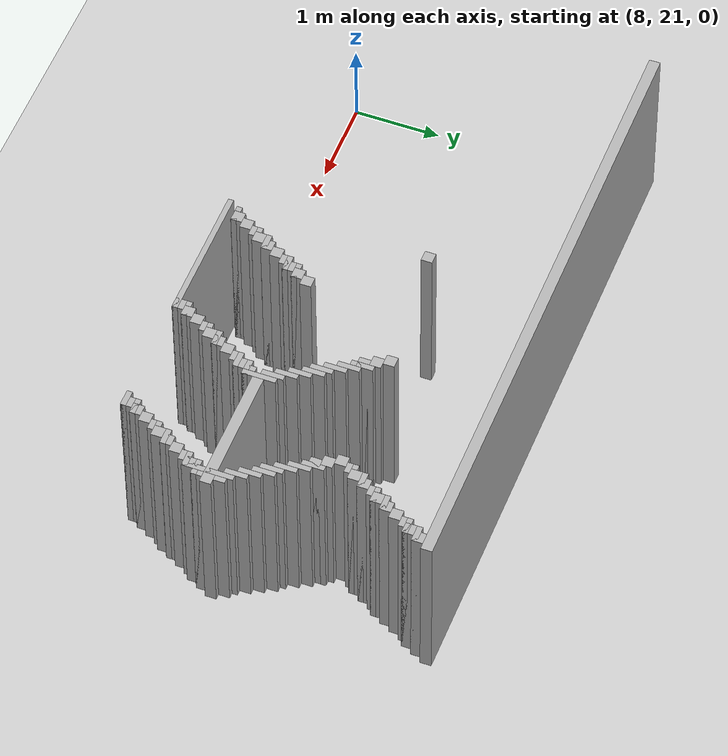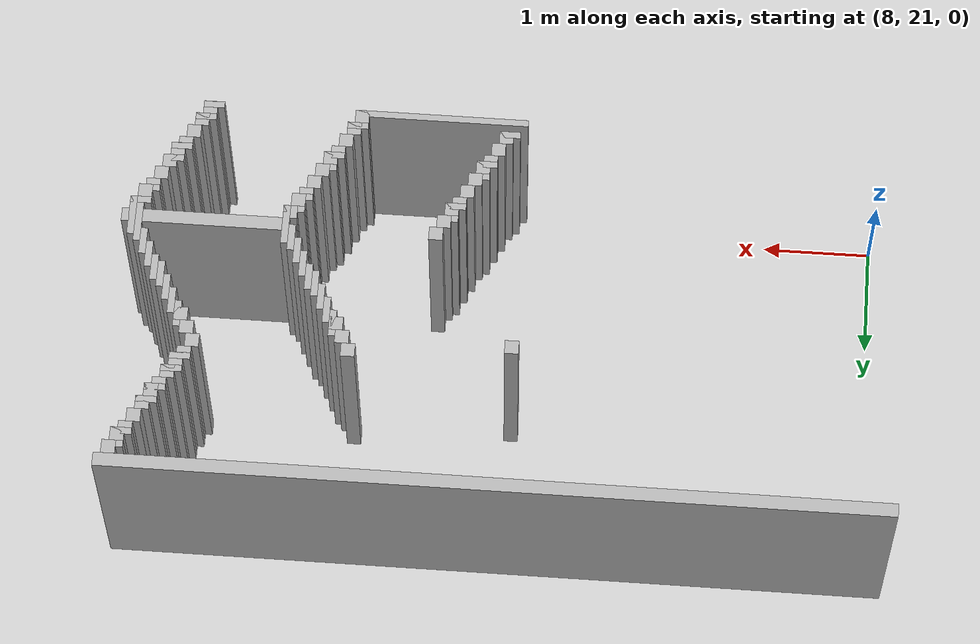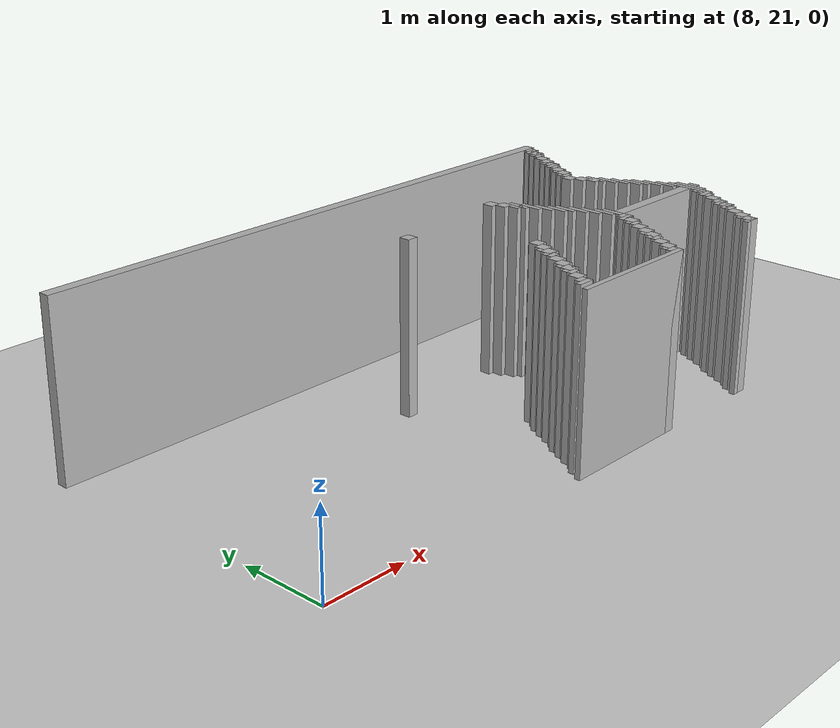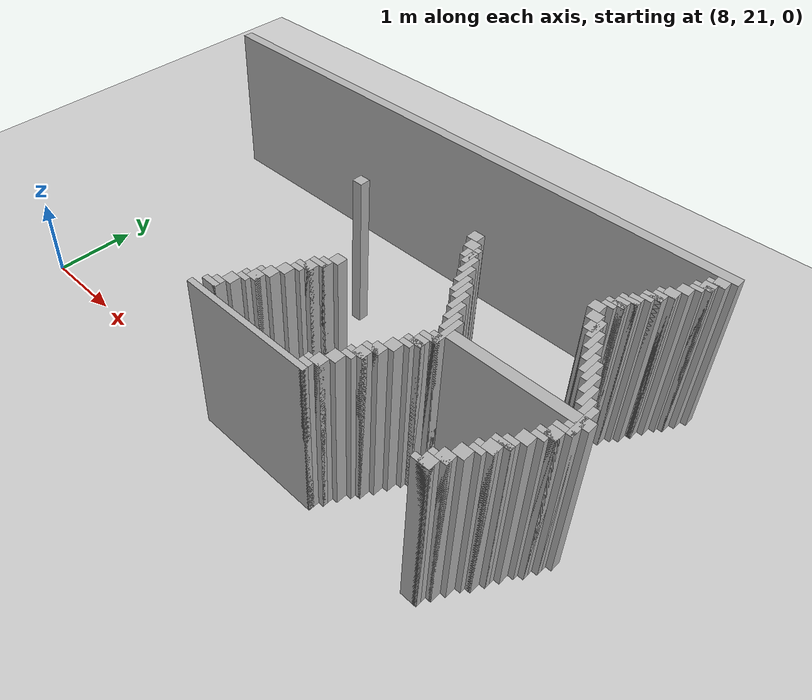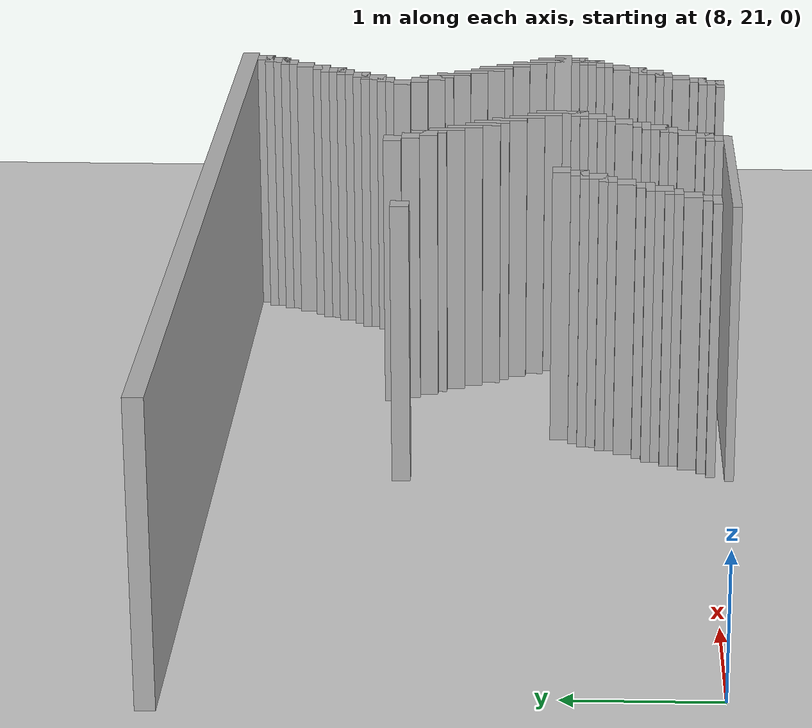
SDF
<sdf version="1.6">
 <world name="slam_world">
  <model name="ground_plane">
   <static>true</static>
   <link name="link">
    <collision name="collision">
     <geometry><plane><normal>0 0 1</normal><size>100 100</size></plane></geometry>
    </collision>
    <visual name="visual">
     <geometry><plane><normal>0 0 1</normal><size>100 100</size></plane></geometry>
     <material>
      <ambient>0.8 0.8 0.8 1</ambient>
      <diffuse>0.8 0.8 0.8 1</diffuse>
      <specular>0.8 0.8 0.8 1</specular>
     </material>
    </visual>
   </link>
  </model>
  <model name="wall_1">
   <static>true</static>
   <pose>11.361702127659573 24.446808510638295 1.0 0 0 0</pose>
   <link name="link">
    <collision name="collision">
     <geometry><box><size>7.148936170212766 0.1276595744680851 2.0</size></box></geometry>
    </collision>
    <visual name="visual">
     <geometry><box><size>7.148936170212766 0.1276595744680851 2.0</size></box></geometry>
     <material><ambient>0.5 0.5 0.5 1</ambient><diffuse>0.7 0.7 0.7 1</diffuse></material>
    </visual>
   </link>
  </model>
  <model name="wall_6">
   <static>true</static>
   <pose>14.808510638297872 24.319148936170212 1.0 0 0 0</pose>
   <link name="link">
    <collision name="collision">
     <geometry><box><size>0.1276595744680851 0.1276595744680851 2.0</size></box></geometry>
    </collision>
    <visual name="visual">
     <geometry><box><size>0.1276595744680851 0.1276595744680851 2.0</size></box></geometry>
     <material><ambient>0.5 0.5 0.5 1</ambient><diffuse>0.7 0.7 0.7 1</diffuse></material>
    </visual>
   </link>
  </model>
  <model name="wall_11">
   <static>true</static>
   <pose>14.77659574468085 24.28723404255319 1.0 0 0 0</pose>
   <link name="link">
    <collision name="collision">
     <geometry><box><size>0.19148936170212766 0.06382978723404255 2.0</size></box></geometry>
    </collision>
    <visual name="visual">
     <geometry><box><size>0.19148936170212766 0.06382978723404255 2.0</size></box></geometry>
     <material><ambient>0.5 0.5 0.5 1</ambient><diffuse>0.7 0.7 0.7 1</diffuse></material>
    </visual>
   </link>
  </model>
  <model name="wall_16">
   <static>true</static>
   <pose>14.744680851063828 24.191489361702125 1.0 0 0 0</pose>
   <link name="link">
    <collision name="collision">
     <geometry><box><size>0.1276595744680851 0.1276595744680851 2.0</size></box></geometry>
    </collision>
    <visual name="visual">
     <geometry><box><size>0.1276595744680851 0.1276595744680851 2.0</size></box></geometry>
     <material><ambient>0.5 0.5 0.5 1</ambient><diffuse>0.7 0.7 0.7 1</diffuse></material>
    </visual>
   </link>
  </model>
  <model name="wall_21">
   <static>true</static>
   <pose>14.712765957446807 24.159574468085104 1.0 0 0 0</pose>
   <link name="link">
    <collision name="collision">
     <geometry><box><size>0.19148936170212766 0.06382978723404255 2.0</size></box></geometry>
    </collision>
    <visual name="visual">
     <geometry><box><size>0.19148936170212766 0.06382978723404255 2.0</size></box></geometry>
     <material><ambient>0.5 0.5 0.5 1</ambient><diffuse>0.7 0.7 0.7 1</diffuse></material>
    </visual>
   </link>
  </model>
  <model name="wall_25">
   <static>true</static>
   <pose>14.680851063829786 24.095744680851062 1.0 0 0 0</pose>
   <link name="link">
    <collision name="collision">
     <geometry><box><size>0.1276595744680851 0.06382978723404255 2.0</size></box></geometry>
    </collision>
    <visual name="visual">
     <geometry><box><size>0.1276595744680851 0.06382978723404255 2.0</size></box></geometry>
     <material><ambient>0.5 0.5 0.5 1</ambient><diffuse>0.7 0.7 0.7 1</diffuse></material>
    </visual>
   </link>
  </model>
  <model name="wall_30">
   <static>true</static>
   <pose>14.617021276595743 23.999999999999996 1.0 0 0 0</pose>
   <link name="link">
    <collision name="collision">
     <geometry><box><size>0.1276595744680851 0.1276595744680851 2.0</size></box></geometry>
    </collision>
    <visual name="visual">
     <geometry><box><size>0.1276595744680851 0.1276595744680851 2.0</size></box></geometry>
     <material><ambient>0.5 0.5 0.5 1</ambient><diffuse>0.7 0.7 0.7 1</diffuse></material>
    </visual>
   </link>
  </model>
  <model name="wall_35">
   <static>true</static>
   <pose>14.553191489361701 23.872340425531913 1.0 0 0 0</pose>
   <link name="link">
    <collision name="collision">
     <geometry><box><size>0.1276595744680851 0.1276595744680851 2.0</size></box></geometry>
    </collision>
    <visual name="visual">
     <geometry><box><size>0.1276595744680851 0.1276595744680851 2.0</size></box></geometry>
     <material><ambient>0.5 0.5 0.5 1</ambient><diffuse>0.7 0.7 0.7 1</diffuse></material>
    </visual>
   </link>
  </model>
  <model name="wall_40">
   <static>true</static>
   <pose>14.52127659574468 23.840425531914892 1.0 0 0 0</pose>
   <link name="link">
    <collision name="collision">
     <geometry><box><size>0.19148936170212766 0.06382978723404255 2.0</size></box></geometry>
    </collision>
    <visual name="visual">
     <geometry><box><size>0.19148936170212766 0.06382978723404255 2.0</size></box></geometry>
     <material><ambient>0.5 0.5 0.5 1</ambient><diffuse>0.7 0.7 0.7 1</diffuse></material>
    </visual>
   </link>
  </model>
  <model name="wall_44">
   <static>true</static>
   <pose>14.489361702127658 23.744680851063826 1.0 0 0 0</pose>
   <link name="link">
    <collision name="collision">
     <geometry><box><size>0.1276595744680851 0.1276595744680851 2.0</size></box></geometry>
    </collision>
    <visual name="visual">
     <geometry><box><size>0.1276595744680851 0.1276595744680851 2.0</size></box></geometry>
     <material><ambient>0.5 0.5 0.5 1</ambient><diffuse>0.7 0.7 0.7 1</diffuse></material>
    </visual>
   </link>
  </model>
  <model name="wall_49">
   <static>true</static>
   <pose>14.457446808510637 23.712765957446805 1.0 0 0 0</pose>
   <link name="link">
    <collision name="collision">
     <geometry><box><size>0.19148936170212766 0.06382978723404255 2.0</size></box></geometry>
    </collision>
    <visual name="visual">
     <geometry><box><size>0.19148936170212766 0.06382978723404255 2.0</size></box></geometry>
     <material><ambient>0.5 0.5 0.5 1</ambient><diffuse>0.7 0.7 0.7 1</diffuse></material>
    </visual>
   </link>
  </model>
  <model name="wall_53">
   <static>true</static>
   <pose>14.425531914893616 23.648936170212764 1.0 0 0 0</pose>
   <link name="link">
    <collision name="collision">
     <geometry><box><size>0.1276595744680851 0.06382978723404255 2.0</size></box></geometry>
    </collision>
    <visual name="visual">
     <geometry><box><size>0.1276595744680851 0.06382978723404255 2.0</size></box></geometry>
     <material><ambient>0.5 0.5 0.5 1</ambient><diffuse>0.7 0.7 0.7 1</diffuse></material>
    </visual>
   </link>
  </model>
  <model name="wall_58">
   <static>true</static>
   <pose>14.361702127659573 23.5531914893617 1.0 0 0 0</pose>
   <link name="link">
    <collision name="collision">
     <geometry><box><size>0.1276595744680851 0.1276595744680851 2.0</size></box></geometry>
    </collision>
    <visual name="visual">
     <geometry><box><size>0.1276595744680851 0.1276595744680851 2.0</size></box></geometry>
     <material><ambient>0.5 0.5 0.5 1</ambient><diffuse>0.7 0.7 0.7 1</diffuse></material>
    </visual>
   </link>
  </model>
  <model name="wall_63">
   <static>true</static>
   <pose>14.329787234042552 23.52127659574468 1.0 0 0 0</pose>
   <link name="link">
    <collision name="collision">
     <geometry><box><size>0.19148936170212766 0.06382978723404255 2.0</size></box></geometry>
    </collision>
    <visual name="visual">
     <geometry><box><size>0.19148936170212766 0.06382978723404255 2.0</size></box></geometry>
     <material><ambient>0.5 0.5 0.5 1</ambient><diffuse>0.7 0.7 0.7 1</diffuse></material>
    </visual>
   </link>
  </model>
  <model name="wall_67">
   <static>true</static>
   <pose>14.297872340425531 23.425531914893615 1.0 0 0 0</pose>
   <link name="link">
    <collision name="collision">
     <geometry><box><size>0.1276595744680851 0.1276595744680851 2.0</size></box></geometry>
    </collision>
    <visual name="visual">
     <geometry><box><size>0.1276595744680851 0.1276595744680851 2.0</size></box></geometry>
     <material><ambient>0.5 0.5 0.5 1</ambient><diffuse>0.7 0.7 0.7 1</diffuse></material>
    </visual>
   </link>
  </model>
  <model name="wall_72">
   <static>true</static>
   <pose>14.265957446808509 23.393617021276594 1.0 0 0 0</pose>
   <link name="link">
    <collision name="collision">
     <geometry><box><size>0.19148936170212766 0.06382978723404255 2.0</size></box></geometry>
    </collision>
    <visual name="visual">
     <geometry><box><size>0.19148936170212766 0.06382978723404255 2.0</size></box></geometry>
     <material><ambient>0.5 0.5 0.5 1</ambient><diffuse>0.7 0.7 0.7 1</diffuse></material>
    </visual>
   </link>
  </model>
  <model name="wall_76">
   <static>true</static>
   <pose>14.234042553191488 23.329787234042552 1.0 0 0 0</pose>
   <link name="link">
    <collision name="collision">
     <geometry><box><size>0.1276595744680851 0.06382978723404255 2.0</size></box></geometry>
    </collision>
    <visual name="visual">
     <geometry><box><size>0.1276595744680851 0.06382978723404255 2.0</size></box></geometry>
     <material><ambient>0.5 0.5 0.5 1</ambient><diffuse>0.7 0.7 0.7 1</diffuse></material>
    </visual>
   </link>
  </model>
  <model name="wall_82">
   <static>true</static>
   <pose>12.76595744680851 23.234042553191486 1.0 0 0 0</pose>
   <link name="link">
    <collision name="collision">
     <geometry><box><size>0.1276595744680851 0.1276595744680851 2.0</size></box></geometry>
    </collision>
    <visual name="visual">
     <geometry><box><size>0.1276595744680851 0.1276595744680851 2.0</size></box></geometry>
     <material><ambient>0.5 0.5 0.5 1</ambient><diffuse>0.7 0.7 0.7 1</diffuse></material>
    </visual>
   </link>
  </model>
  <model name="wall_83">
   <static>true</static>
   <pose>14.170212765957446 23.234042553191486 1.0 0 0 0</pose>
   <link name="link">
    <collision name="collision">
     <geometry><box><size>0.1276595744680851 0.1276595744680851 2.0</size></box></geometry>
    </collision>
    <visual name="visual">
     <geometry><box><size>0.1276595744680851 0.1276595744680851 2.0</size></box></geometry>
     <material><ambient>0.5 0.5 0.5 1</ambient><diffuse>0.7 0.7 0.7 1</diffuse></material>
    </visual>
   </link>
  </model>
  <model name="wall_91">
   <static>true</static>
   <pose>11.297872340425531 23.106382978723403 1.0 0 0 0</pose>
   <link name="link">
    <collision name="collision">
     <geometry><box><size>0.1276595744680851 0.1276595744680851 2.0</size></box></geometry>
    </collision>
    <visual name="visual">
     <geometry><box><size>0.1276595744680851 0.1276595744680851 2.0</size></box></geometry>
     <material><ambient>0.5 0.5 0.5 1</ambient><diffuse>0.7 0.7 0.7 1</diffuse></material>
    </visual>
   </link>
  </model>
  <model name="wall_92">
   <static>true</static>
   <pose>12.829787234042552 23.106382978723403 1.0 0 0 0</pose>
   <link name="link">
    <collision name="collision">
     <geometry><box><size>0.1276595744680851 0.1276595744680851 2.0</size></box></geometry>
    </collision>
    <visual name="visual">
     <geometry><box><size>0.1276595744680851 0.1276595744680851 2.0</size></box></geometry>
     <material><ambient>0.5 0.5 0.5 1</ambient><diffuse>0.7 0.7 0.7 1</diffuse></material>
    </visual>
   </link>
  </model>
  <model name="wall_93">
   <static>true</static>
   <pose>14.234042553191488 23.106382978723403 1.0 0 0 0</pose>
   <link name="link">
    <collision name="collision">
     <geometry><box><size>0.1276595744680851 0.1276595744680851 2.0</size></box></geometry>
    </collision>
    <visual name="visual">
     <geometry><box><size>0.1276595744680851 0.1276595744680851 2.0</size></box></geometry>
     <material><ambient>0.5 0.5 0.5 1</ambient><diffuse>0.7 0.7 0.7 1</diffuse></material>
    </visual>
   </link>
  </model>
  <model name="wall_102">
   <static>true</static>
   <pose>12.925531914893616 22.978723404255316 1.0 0 0 0</pose>
   <link name="link">
    <collision name="collision">
     <geometry><box><size>0.06382978723404255 0.2553191489361702 2.0</size></box></geometry>
    </collision>
    <visual name="visual">
     <geometry><box><size>0.06382978723404255 0.2553191489361702 2.0</size></box></geometry>
     <material><ambient>0.5 0.5 0.5 1</ambient><diffuse>0.7 0.7 0.7 1</diffuse></material>
    </visual>
   </link>
  </model>
  <model name="wall_103">
   <static>true</static>
   <pose>14.329787234042552 22.978723404255316 1.0 0 0 0</pose>
   <link name="link">
    <collision name="collision">
     <geometry><box><size>0.06382978723404255 0.2553191489361702 2.0</size></box></geometry>
    </collision>
    <visual name="visual">
     <geometry><box><size>0.06382978723404255 0.2553191489361702 2.0</size></box></geometry>
     <material><ambient>0.5 0.5 0.5 1</ambient><diffuse>0.7 0.7 0.7 1</diffuse></material>
    </visual>
   </link>
  </model>
  <model name="wall_112">
   <static>true</static>
   <pose>12.893617021276595 22.978723404255316 1.0 0 0 0</pose>
   <link name="link">
    <collision name="collision">
     <geometry><box><size>0.1276595744680851 0.1276595744680851 2.0</size></box></geometry>
    </collision>
    <visual name="visual">
     <geometry><box><size>0.1276595744680851 0.1276595744680851 2.0</size></box></geometry>
     <material><ambient>0.5 0.5 0.5 1</ambient><diffuse>0.7 0.7 0.7 1</diffuse></material>
    </visual>
   </link>
  </model>
  <model name="wall_113">
   <static>true</static>
   <pose>14.297872340425531 22.978723404255316 1.0 0 0 0</pose>
   <link name="link">
    <collision name="collision">
     <geometry><box><size>0.1276595744680851 0.1276595744680851 2.0</size></box></geometry>
    </collision>
    <visual name="visual">
     <geometry><box><size>0.1276595744680851 0.1276595744680851 2.0</size></box></geometry>
     <material><ambient>0.5 0.5 0.5 1</ambient><diffuse>0.7 0.7 0.7 1</diffuse></material>
    </visual>
   </link>
  </model>
  <model name="wall_122">
   <static>true</static>
   <pose>12.989361702127658 22.851063829787233 1.0 0 0 0</pose>
   <link name="link">
    <collision name="collision">
     <geometry><box><size>0.06382978723404255 0.2553191489361702 2.0</size></box></geometry>
    </collision>
    <visual name="visual">
     <geometry><box><size>0.06382978723404255 0.2553191489361702 2.0</size></box></geometry>
     <material><ambient>0.5 0.5 0.5 1</ambient><diffuse>0.7 0.7 0.7 1</diffuse></material>
    </visual>
   </link>
  </model>
  <model name="wall_123">
   <static>true</static>
   <pose>14.393617021276595 22.851063829787233 1.0 0 0 0</pose>
   <link name="link">
    <collision name="collision">
     <geometry><box><size>0.06382978723404255 0.2553191489361702 2.0</size></box></geometry>
    </collision>
    <visual name="visual">
     <geometry><box><size>0.06382978723404255 0.2553191489361702 2.0</size></box></geometry>
     <material><ambient>0.5 0.5 0.5 1</ambient><diffuse>0.7 0.7 0.7 1</diffuse></material>
    </visual>
   </link>
  </model>
  <model name="wall_136">
   <static>true</static>
   <pose>13.053191489361701 22.723404255319146 1.0 0 0 0</pose>
   <link name="link">
    <collision name="collision">
     <geometry><box><size>0.06382978723404255 0.2553191489361702 2.0</size></box></geometry>
    </collision>
    <visual name="visual">
     <geometry><box><size>0.06382978723404255 0.2553191489361702 2.0</size></box></geometry>
     <material><ambient>0.5 0.5 0.5 1</ambient><diffuse>0.7 0.7 0.7 1</diffuse></material>
    </visual>
   </link>
  </model>
  <model name="wall_137">
   <static>true</static>
   <pose>14.457446808510637 22.723404255319146 1.0 0 0 0</pose>
   <link name="link">
    <collision name="collision">
     <geometry><box><size>0.06382978723404255 0.2553191489361702 2.0</size></box></geometry>
    </collision>
    <visual name="visual">
     <geometry><box><size>0.06382978723404255 0.2553191489361702 2.0</size></box></geometry>
     <material><ambient>0.5 0.5 0.5 1</ambient><diffuse>0.7 0.7 0.7 1</diffuse></material>
    </visual>
   </link>
  </model>
  <model name="wall_146">
   <static>true</static>
   <pose>13.117021276595743 22.595744680851062 1.0 0 0 0</pose>
   <link name="link">
    <collision name="collision">
     <geometry><box><size>0.06382978723404255 0.2553191489361702 2.0</size></box></geometry>
    </collision>
    <visual name="visual">
     <geometry><box><size>0.06382978723404255 0.2553191489361702 2.0</size></box></geometry>
     <material><ambient>0.5 0.5 0.5 1</ambient><diffuse>0.7 0.7 0.7 1</diffuse></material>
    </visual>
   </link>
  </model>
  <model name="wall_147">
   <static>true</static>
   <pose>14.52127659574468 22.595744680851062 1.0 0 0 0</pose>
   <link name="link">
    <collision name="collision">
     <geometry><box><size>0.06382978723404255 0.2553191489361702 2.0</size></box></geometry>
    </collision>
    <visual name="visual">
     <geometry><box><size>0.06382978723404255 0.2553191489361702 2.0</size></box></geometry>
     <material><ambient>0.5 0.5 0.5 1</ambient><diffuse>0.7 0.7 0.7 1</diffuse></material>
    </visual>
   </link>
  </model>
  <model name="wall_156">
   <static>true</static>
   <pose>13.180851063829786 22.53191489361702 1.0 0 0 0</pose>
   <link name="link">
    <collision name="collision">
     <geometry><box><size>0.06382978723404255 0.2553191489361702 2.0</size></box></geometry>
    </collision>
    <visual name="visual">
     <geometry><box><size>0.06382978723404255 0.2553191489361702 2.0</size></box></geometry>
     <material><ambient>0.5 0.5 0.5 1</ambient><diffuse>0.7 0.7 0.7 1</diffuse></material>
    </visual>
   </link>
  </model>
  <model name="wall_157">
   <static>true</static>
   <pose>14.585106382978722 22.53191489361702 1.0 0 0 0</pose>
   <link name="link">
    <collision name="collision">
     <geometry><box><size>0.06382978723404255 0.2553191489361702 2.0</size></box></geometry>
    </collision>
    <visual name="visual">
     <geometry><box><size>0.06382978723404255 0.2553191489361702 2.0</size></box></geometry>
     <material><ambient>0.5 0.5 0.5 1</ambient><diffuse>0.7 0.7 0.7 1</diffuse></material>
    </visual>
   </link>
  </model>
  <model name="wall_170">
   <static>true</static>
   <pose>13.244680851063828 22.404255319148934 1.0 0 0 0</pose>
   <link name="link">
    <collision name="collision">
     <geometry><box><size>0.06382978723404255 0.2553191489361702 2.0</size></box></geometry>
    </collision>
    <visual name="visual">
     <geometry><box><size>0.06382978723404255 0.2553191489361702 2.0</size></box></geometry>
     <material><ambient>0.5 0.5 0.5 1</ambient><diffuse>0.7 0.7 0.7 1</diffuse></material>
    </visual>
   </link>
  </model>
  <model name="wall_171">
   <static>true</static>
   <pose>14.648936170212766 22.404255319148934 1.0 0 0 0</pose>
   <link name="link">
    <collision name="collision">
     <geometry><box><size>0.06382978723404255 0.2553191489361702 2.0</size></box></geometry>
    </collision>
    <visual name="visual">
     <geometry><box><size>0.06382978723404255 0.2553191489361702 2.0</size></box></geometry>
     <material><ambient>0.5 0.5 0.5 1</ambient><diffuse>0.7 0.7 0.7 1</diffuse></material>
    </visual>
   </link>
  </model>
  <model name="wall_184">
   <static>true</static>
   <pose>13.308510638297872 22.27659574468085 1.0 0 0 0</pose>
   <link name="link">
    <collision name="collision">
     <geometry><box><size>0.06382978723404255 0.2553191489361702 2.0</size></box></geometry>
    </collision>
    <visual name="visual">
     <geometry><box><size>0.06382978723404255 0.2553191489361702 2.0</size></box></geometry>
     <material><ambient>0.5 0.5 0.5 1</ambient><diffuse>0.7 0.7 0.7 1</diffuse></material>
    </visual>
   </link>
  </model>
  <model name="wall_185">
   <static>true</static>
   <pose>14.712765957446807 22.27659574468085 1.0 0 0 0</pose>
   <link name="link">
    <collision name="collision">
     <geometry><box><size>0.06382978723404255 0.2553191489361702 2.0</size></box></geometry>
    </collision>
    <visual name="visual">
     <geometry><box><size>0.06382978723404255 0.2553191489361702 2.0</size></box></geometry>
     <material><ambient>0.5 0.5 0.5 1</ambient><diffuse>0.7 0.7 0.7 1</diffuse></material>
    </visual>
   </link>
  </model>
  <model name="wall_198">
   <static>true</static>
   <pose>13.372340425531913 22.148936170212764 1.0 0 0 0</pose>
   <link name="link">
    <collision name="collision">
     <geometry><box><size>0.06382978723404255 0.2553191489361702 2.0</size></box></geometry>
    </collision>
    <visual name="visual">
     <geometry><box><size>0.06382978723404255 0.2553191489361702 2.0</size></box></geometry>
     <material><ambient>0.5 0.5 0.5 1</ambient><diffuse>0.7 0.7 0.7 1</diffuse></material>
    </visual>
   </link>
  </model>
  <model name="wall_199">
   <static>true</static>
   <pose>14.77659574468085 21.989361702127656 1.0 0 0 0</pose>
   <link name="link">
    <collision name="collision">
     <geometry><box><size>0.06382978723404255 0.5744680851063829 2.0</size></box></geometry>
    </collision>
    <visual name="visual">
     <geometry><box><size>0.06382978723404255 0.5744680851063829 2.0</size></box></geometry>
     <material><ambient>0.5 0.5 0.5 1</ambient><diffuse>0.7 0.7 0.7 1</diffuse></material>
    </visual>
   </link>
  </model>
  <model name="wall_207">
   <static>true</static>
   <pose>13.436170212765957 22.02127659574468 1.0 0 0 0</pose>
   <link name="link">
    <collision name="collision">
     <geometry><box><size>0.06382978723404255 0.3829787234042553 2.0</size></box></geometry>
    </collision>
    <visual name="visual">
     <geometry><box><size>0.06382978723404255 0.3829787234042553 2.0</size></box></geometry>
     <material><ambient>0.5 0.5 0.5 1</ambient><diffuse>0.7 0.7 0.7 1</diffuse></material>
    </visual>
   </link>
  </model>
  <model name="wall_208">
   <static>true</static>
   <pose>14.840425531914892 22.02127659574468 1.0 0 0 0</pose>
   <link name="link">
    <collision name="collision">
     <geometry><box><size>0.06382978723404255 0.3829787234042553 2.0</size></box></geometry>
    </collision>
    <visual name="visual">
     <geometry><box><size>0.06382978723404255 0.3829787234042553 2.0</size></box></geometry>
     <material><ambient>0.5 0.5 0.5 1</ambient><diffuse>0.7 0.7 0.7 1</diffuse></material>
    </visual>
   </link>
  </model>
  <model name="wall_220">
   <static>true</static>
   <pose>12.063829787234042 22.02127659574468 1.0 0 0 0</pose>
   <link name="link">
    <collision name="collision">
     <geometry><box><size>0.1276595744680851 0.1276595744680851 2.0</size></box></geometry>
    </collision>
    <visual name="visual">
     <geometry><box><size>0.1276595744680851 0.1276595744680851 2.0</size></box></geometry>
     <material><ambient>0.5 0.5 0.5 1</ambient><diffuse>0.7 0.7 0.7 1</diffuse></material>
    </visual>
   </link>
  </model>
  <model name="wall_221">
   <static>true</static>
   <pose>14.202127659574467 22.02127659574468 1.0 0 0 0</pose>
   <link name="link">
    <collision name="collision">
     <geometry><box><size>1.4680851063829785 0.1276595744680851 2.0</size></box></geometry>
    </collision>
    <visual name="visual">
     <geometry><box><size>1.4680851063829785 0.1276595744680851 2.0</size></box></geometry>
     <material><ambient>0.5 0.5 0.5 1</ambient><diffuse>0.7 0.7 0.7 1</diffuse></material>
    </visual>
   </link>
  </model>
  <model name="wall_231">
   <static>true</static>
   <pose>11.999999999999998 21.893617021276594 1.0 0 0 0</pose>
   <link name="link">
    <collision name="collision">
     <geometry><box><size>0.1276595744680851 0.1276595744680851 2.0</size></box></geometry>
    </collision>
    <visual name="visual">
     <geometry><box><size>0.1276595744680851 0.1276595744680851 2.0</size></box></geometry>
     <material><ambient>0.5 0.5 0.5 1</ambient><diffuse>0.7 0.7 0.7 1</diffuse></material>
    </visual>
   </link>
  </model>
  <model name="wall_232">
   <static>true</static>
   <pose>13.404255319148936 21.893617021276594 1.0 0 0 0</pose>
   <link name="link">
    <collision name="collision">
     <geometry><box><size>0.1276595744680851 0.1276595744680851 2.0</size></box></geometry>
    </collision>
    <visual name="visual">
     <geometry><box><size>0.1276595744680851 0.1276595744680851 2.0</size></box></geometry>
     <material><ambient>0.5 0.5 0.5 1</ambient><diffuse>0.7 0.7 0.7 1</diffuse></material>
    </visual>
   </link>
  </model>
  <model name="wall_238">
   <static>true</static>
   <pose>11.968085106382977 21.861702127659573 1.0 0 0 0</pose>
   <link name="link">
    <collision name="collision">
     <geometry><box><size>0.19148936170212766 0.06382978723404255 2.0</size></box></geometry>
    </collision>
    <visual name="visual">
     <geometry><box><size>0.19148936170212766 0.06382978723404255 2.0</size></box></geometry>
     <material><ambient>0.5 0.5 0.5 1</ambient><diffuse>0.7 0.7 0.7 1</diffuse></material>
    </visual>
   </link>
  </model>
  <model name="wall_239">
   <static>true</static>
   <pose>13.372340425531913 21.861702127659573 1.0 0 0 0</pose>
   <link name="link">
    <collision name="collision">
     <geometry><box><size>0.19148936170212766 0.06382978723404255 2.0</size></box></geometry>
    </collision>
    <visual name="visual">
     <geometry><box><size>0.19148936170212766 0.06382978723404255 2.0</size></box></geometry>
     <material><ambient>0.5 0.5 0.5 1</ambient><diffuse>0.7 0.7 0.7 1</diffuse></material>
    </visual>
   </link>
  </model>
  <model name="wall_240">
   <static>true</static>
   <pose>14.77659574468085 21.861702127659573 1.0 0 0 0</pose>
   <link name="link">
    <collision name="collision">
     <geometry><box><size>0.19148936170212766 0.06382978723404255 2.0</size></box></geometry>
    </collision>
    <visual name="visual">
     <geometry><box><size>0.19148936170212766 0.06382978723404255 2.0</size></box></geometry>
     <material><ambient>0.5 0.5 0.5 1</ambient><diffuse>0.7 0.7 0.7 1</diffuse></material>
    </visual>
   </link>
  </model>
  <model name="wall_244">
   <static>true</static>
   <pose>11.936170212765957 21.76595744680851 1.0 0 0 0</pose>
   <link name="link">
    <collision name="collision">
     <geometry><box><size>0.1276595744680851 0.1276595744680851 2.0</size></box></geometry>
    </collision>
    <visual name="visual">
     <geometry><box><size>0.1276595744680851 0.1276595744680851 2.0</size></box></geometry>
     <material><ambient>0.5 0.5 0.5 1</ambient><diffuse>0.7 0.7 0.7 1</diffuse></material>
    </visual>
   </link>
  </model>
  <model name="wall_245">
   <static>true</static>
   <pose>13.340425531914892 21.76595744680851 1.0 0 0 0</pose>
   <link name="link">
    <collision name="collision">
     <geometry><box><size>0.1276595744680851 0.1276595744680851 2.0</size></box></geometry>
    </collision>
    <visual name="visual">
     <geometry><box><size>0.1276595744680851 0.1276595744680851 2.0</size></box></geometry>
     <material><ambient>0.5 0.5 0.5 1</ambient><diffuse>0.7 0.7 0.7 1</diffuse></material>
    </visual>
   </link>
  </model>
  <model name="wall_246">
   <static>true</static>
   <pose>14.744680851063828 21.76595744680851 1.0 0 0 0</pose>
   <link name="link">
    <collision name="collision">
     <geometry><box><size>0.1276595744680851 0.1276595744680851 2.0</size></box></geometry>
    </collision>
    <visual name="visual">
     <geometry><box><size>0.1276595744680851 0.1276595744680851 2.0</size></box></geometry>
     <material><ambient>0.5 0.5 0.5 1</ambient><diffuse>0.7 0.7 0.7 1</diffuse></material>
    </visual>
   </link>
  </model>
  <model name="wall_252">
   <static>true</static>
   <pose>11.904255319148936 21.734042553191486 1.0 0 0 0</pose>
   <link name="link">
    <collision name="collision">
     <geometry><box><size>0.19148936170212766 0.06382978723404255 2.0</size></box></geometry>
    </collision>
    <visual name="visual">
     <geometry><box><size>0.19148936170212766 0.06382978723404255 2.0</size></box></geometry>
     <material><ambient>0.5 0.5 0.5 1</ambient><diffuse>0.7 0.7 0.7 1</diffuse></material>
    </visual>
   </link>
  </model>
  <model name="wall_253">
   <static>true</static>
   <pose>13.308510638297872 21.734042553191486 1.0 0 0 0</pose>
   <link name="link">
    <collision name="collision">
     <geometry><box><size>0.19148936170212766 0.06382978723404255 2.0</size></box></geometry>
    </collision>
    <visual name="visual">
     <geometry><box><size>0.19148936170212766 0.06382978723404255 2.0</size></box></geometry>
     <material><ambient>0.5 0.5 0.5 1</ambient><diffuse>0.7 0.7 0.7 1</diffuse></material>
    </visual>
   </link>
  </model>
  <model name="wall_254">
   <static>true</static>
   <pose>14.712765957446807 21.734042553191486 1.0 0 0 0</pose>
   <link name="link">
    <collision name="collision">
     <geometry><box><size>0.19148936170212766 0.06382978723404255 2.0</size></box></geometry>
    </collision>
    <visual name="visual">
     <geometry><box><size>0.19148936170212766 0.06382978723404255 2.0</size></box></geometry>
     <material><ambient>0.5 0.5 0.5 1</ambient><diffuse>0.7 0.7 0.7 1</diffuse></material>
    </visual>
   </link>
  </model>
  <model name="wall_258">
   <static>true</static>
   <pose>11.872340425531913 21.670212765957444 1.0 0 0 0</pose>
   <link name="link">
    <collision name="collision">
     <geometry><box><size>0.1276595744680851 0.06382978723404255 2.0</size></box></geometry>
    </collision>
    <visual name="visual">
     <geometry><box><size>0.1276595744680851 0.06382978723404255 2.0</size></box></geometry>
     <material><ambient>0.5 0.5 0.5 1</ambient><diffuse>0.7 0.7 0.7 1</diffuse></material>
    </visual>
   </link>
  </model>
  <model name="wall_259">
   <static>true</static>
   <pose>13.27659574468085 21.670212765957444 1.0 0 0 0</pose>
   <link name="link">
    <collision name="collision">
     <geometry><box><size>0.1276595744680851 0.06382978723404255 2.0</size></box></geometry>
    </collision>
    <visual name="visual">
     <geometry><box><size>0.1276595744680851 0.06382978723404255 2.0</size></box></geometry>
     <material><ambient>0.5 0.5 0.5 1</ambient><diffuse>0.7 0.7 0.7 1</diffuse></material>
    </visual>
   </link>
  </model>
  <model name="wall_260">
   <static>true</static>
   <pose>14.680851063829786 21.670212765957444 1.0 0 0 0</pose>
   <link name="link">
    <collision name="collision">
     <geometry><box><size>0.1276595744680851 0.06382978723404255 2.0</size></box></geometry>
    </collision>
    <visual name="visual">
     <geometry><box><size>0.1276595744680851 0.06382978723404255 2.0</size></box></geometry>
     <material><ambient>0.5 0.5 0.5 1</ambient><diffuse>0.7 0.7 0.7 1</diffuse></material>
    </visual>
   </link>
  </model>
  <model name="wall_266">
   <static>true</static>
   <pose>11.808510638297872 21.574468085106382 1.0 0 0 0</pose>
   <link name="link">
    <collision name="collision">
     <geometry><box><size>0.1276595744680851 0.1276595744680851 2.0</size></box></geometry>
    </collision>
    <visual name="visual">
     <geometry><box><size>0.1276595744680851 0.1276595744680851 2.0</size></box></geometry>
     <material><ambient>0.5 0.5 0.5 1</ambient><diffuse>0.7 0.7 0.7 1</diffuse></material>
    </visual>
   </link>
  </model>
  <model name="wall_267">
   <static>true</static>
   <pose>13.212765957446807 21.574468085106382 1.0 0 0 0</pose>
   <link name="link">
    <collision name="collision">
     <geometry><box><size>0.1276595744680851 0.1276595744680851 2.0</size></box></geometry>
    </collision>
    <visual name="visual">
     <geometry><box><size>0.1276595744680851 0.1276595744680851 2.0</size></box></geometry>
     <material><ambient>0.5 0.5 0.5 1</ambient><diffuse>0.7 0.7 0.7 1</diffuse></material>
    </visual>
   </link>
  </model>
  <model name="wall_268">
   <static>true</static>
   <pose>14.617021276595743 21.574468085106382 1.0 0 0 0</pose>
   <link name="link">
    <collision name="collision">
     <geometry><box><size>0.1276595744680851 0.1276595744680851 2.0</size></box></geometry>
    </collision>
    <visual name="visual">
     <geometry><box><size>0.1276595744680851 0.1276595744680851 2.0</size></box></geometry>
     <material><ambient>0.5 0.5 0.5 1</ambient><diffuse>0.7 0.7 0.7 1</diffuse></material>
    </visual>
   </link>
  </model>
  <model name="wall_274">
   <static>true</static>
   <pose>11.744680851063828 21.446808510638295 1.0 0 0 0</pose>
   <link name="link">
    <collision name="collision">
     <geometry><box><size>0.1276595744680851 0.1276595744680851 2.0</size></box></geometry>
    </collision>
    <visual name="visual">
     <geometry><box><size>0.1276595744680851 0.1276595744680851 2.0</size></box></geometry>
     <material><ambient>0.5 0.5 0.5 1</ambient><diffuse>0.7 0.7 0.7 1</diffuse></material>
    </visual>
   </link>
  </model>
  <model name="wall_275">
   <static>true</static>
   <pose>13.148936170212766 21.446808510638295 1.0 0 0 0</pose>
   <link name="link">
    <collision name="collision">
     <geometry><box><size>0.1276595744680851 0.1276595744680851 2.0</size></box></geometry>
    </collision>
    <visual name="visual">
     <geometry><box><size>0.1276595744680851 0.1276595744680851 2.0</size></box></geometry>
     <material><ambient>0.5 0.5 0.5 1</ambient><diffuse>0.7 0.7 0.7 1</diffuse></material>
    </visual>
   </link>
  </model>
  <model name="wall_276">
   <static>true</static>
   <pose>14.553191489361701 21.446808510638295 1.0 0 0 0</pose>
   <link name="link">
    <collision name="collision">
     <geometry><box><size>0.1276595744680851 0.1276595744680851 2.0</size></box></geometry>
    </collision>
    <visual name="visual">
     <geometry><box><size>0.1276595744680851 0.1276595744680851 2.0</size></box></geometry>
     <material><ambient>0.5 0.5 0.5 1</ambient><diffuse>0.7 0.7 0.7 1</diffuse></material>
    </visual>
   </link>
  </model>
  <model name="wall_282">
   <static>true</static>
   <pose>11.712765957446807 21.414893617021274 1.0 0 0 0</pose>
   <link name="link">
    <collision name="collision">
     <geometry><box><size>0.19148936170212766 0.06382978723404255 2.0</size></box></geometry>
    </collision>
    <visual name="visual">
     <geometry><box><size>0.19148936170212766 0.06382978723404255 2.0</size></box></geometry>
     <material><ambient>0.5 0.5 0.5 1</ambient><diffuse>0.7 0.7 0.7 1</diffuse></material>
    </visual>
   </link>
  </model>
  <model name="wall_283">
   <static>true</static>
   <pose>13.117021276595743 21.414893617021274 1.0 0 0 0</pose>
   <link name="link">
    <collision name="collision">
     <geometry><box><size>0.19148936170212766 0.06382978723404255 2.0</size></box></geometry>
    </collision>
    <visual name="visual">
     <geometry><box><size>0.19148936170212766 0.06382978723404255 2.0</size></box></geometry>
     <material><ambient>0.5 0.5 0.5 1</ambient><diffuse>0.7 0.7 0.7 1</diffuse></material>
    </visual>
   </link>
  </model>
  <model name="wall_284">
   <static>true</static>
   <pose>14.52127659574468 21.414893617021274 1.0 0 0 0</pose>
   <link name="link">
    <collision name="collision">
     <geometry><box><size>0.19148936170212766 0.06382978723404255 2.0</size></box></geometry>
    </collision>
    <visual name="visual">
     <geometry><box><size>0.19148936170212766 0.06382978723404255 2.0</size></box></geometry>
     <material><ambient>0.5 0.5 0.5 1</ambient><diffuse>0.7 0.7 0.7 1</diffuse></material>
    </visual>
   </link>
  </model>
  <model name="wall_288">
   <static>true</static>
   <pose>11.680851063829786 21.319148936170212 1.0 0 0 0</pose>
   <link name="link">
    <collision name="collision">
     <geometry><box><size>0.1276595744680851 0.1276595744680851 2.0</size></box></geometry>
    </collision>
    <visual name="visual">
     <geometry><box><size>0.1276595744680851 0.1276595744680851 2.0</size></box></geometry>
     <material><ambient>0.5 0.5 0.5 1</ambient><diffuse>0.7 0.7 0.7 1</diffuse></material>
    </visual>
   </link>
  </model>
  <model name="wall_289">
   <static>true</static>
   <pose>13.085106382978722 21.319148936170212 1.0 0 0 0</pose>
   <link name="link">
    <collision name="collision">
     <geometry><box><size>0.1276595744680851 0.1276595744680851 2.0</size></box></geometry>
    </collision>
    <visual name="visual">
     <geometry><box><size>0.1276595744680851 0.1276595744680851 2.0</size></box></geometry>
     <material><ambient>0.5 0.5 0.5 1</ambient><diffuse>0.7 0.7 0.7 1</diffuse></material>
    </visual>
   </link>
  </model>
  <model name="wall_290">
   <static>true</static>
   <pose>14.489361702127658 21.319148936170212 1.0 0 0 0</pose>
   <link name="link">
    <collision name="collision">
     <geometry><box><size>0.1276595744680851 0.1276595744680851 2.0</size></box></geometry>
    </collision>
    <visual name="visual">
     <geometry><box><size>0.1276595744680851 0.1276595744680851 2.0</size></box></geometry>
     <material><ambient>0.5 0.5 0.5 1</ambient><diffuse>0.7 0.7 0.7 1</diffuse></material>
    </visual>
   </link>
  </model>
  <model name="wall_296">
   <static>true</static>
   <pose>11.648936170212766 21.28723404255319 1.0 0 0 0</pose>
   <link name="link">
    <collision name="collision">
     <geometry><box><size>0.19148936170212766 0.06382978723404255 2.0</size></box></geometry>
    </collision>
    <visual name="visual">
     <geometry><box><size>0.19148936170212766 0.06382978723404255 2.0</size></box></geometry>
     <material><ambient>0.5 0.5 0.5 1</ambient><diffuse>0.7 0.7 0.7 1</diffuse></material>
    </visual>
   </link>
  </model>
  <model name="wall_297">
   <static>true</static>
   <pose>13.053191489361701 21.28723404255319 1.0 0 0 0</pose>
   <link name="link">
    <collision name="collision">
     <geometry><box><size>0.19148936170212766 0.06382978723404255 2.0</size></box></geometry>
    </collision>
    <visual name="visual">
     <geometry><box><size>0.19148936170212766 0.06382978723404255 2.0</size></box></geometry>
     <material><ambient>0.5 0.5 0.5 1</ambient><diffuse>0.7 0.7 0.7 1</diffuse></material>
    </visual>
   </link>
  </model>
  <model name="wall_298">
   <static>true</static>
   <pose>14.457446808510637 21.28723404255319 1.0 0 0 0</pose>
   <link name="link">
    <collision name="collision">
     <geometry><box><size>0.19148936170212766 0.06382978723404255 2.0</size></box></geometry>
    </collision>
    <visual name="visual">
     <geometry><box><size>0.19148936170212766 0.06382978723404255 2.0</size></box></geometry>
     <material><ambient>0.5 0.5 0.5 1</ambient><diffuse>0.7 0.7 0.7 1</diffuse></material>
    </visual>
   </link>
  </model>
  <model name="wall_302">
   <static>true</static>
   <pose>11.617021276595743 21.223404255319146 1.0 0 0 0</pose>
   <link name="link">
    <collision name="collision">
     <geometry><box><size>0.1276595744680851 0.06382978723404255 2.0</size></box></geometry>
    </collision>
    <visual name="visual">
     <geometry><box><size>0.1276595744680851 0.06382978723404255 2.0</size></box></geometry>
     <material><ambient>0.5 0.5 0.5 1</ambient><diffuse>0.7 0.7 0.7 1</diffuse></material>
    </visual>
   </link>
  </model>
  <model name="wall_303">
   <static>true</static>
   <pose>13.02127659574468 21.223404255319146 1.0 0 0 0</pose>
   <link name="link">
    <collision name="collision">
     <geometry><box><size>0.1276595744680851 0.06382978723404255 2.0</size></box></geometry>
    </collision>
    <visual name="visual">
     <geometry><box><size>0.1276595744680851 0.06382978723404255 2.0</size></box></geometry>
     <material><ambient>0.5 0.5 0.5 1</ambient><diffuse>0.7 0.7 0.7 1</diffuse></material>
    </visual>
   </link>
  </model>
  <model name="wall_304">
   <static>true</static>
   <pose>14.425531914893616 21.223404255319146 1.0 0 0 0</pose>
   <link name="link">
    <collision name="collision">
     <geometry><box><size>0.1276595744680851 0.06382978723404255 2.0</size></box></geometry>
    </collision>
    <visual name="visual">
     <geometry><box><size>0.1276595744680851 0.06382978723404255 2.0</size></box></geometry>
     <material><ambient>0.5 0.5 0.5 1</ambient><diffuse>0.7 0.7 0.7 1</diffuse></material>
    </visual>
   </link>
  </model>
  <model name="wall_310">
   <static>true</static>
   <pose>11.553191489361701 21.127659574468083 1.0 0 0 0</pose>
   <link name="link">
    <collision name="collision">
     <geometry><box><size>0.1276595744680851 0.1276595744680851 2.0</size></box></geometry>
    </collision>
    <visual name="visual">
     <geometry><box><size>0.1276595744680851 0.1276595744680851 2.0</size></box></geometry>
     <material><ambient>0.5 0.5 0.5 1</ambient><diffuse>0.7 0.7 0.7 1</diffuse></material>
    </visual>
   </link>
  </model>
  <model name="wall_311">
   <static>true</static>
   <pose>12.957446808510637 21.127659574468083 1.0 0 0 0</pose>
   <link name="link">
    <collision name="collision">
     <geometry><box><size>0.1276595744680851 0.1276595744680851 2.0</size></box></geometry>
    </collision>
    <visual name="visual">
     <geometry><box><size>0.1276595744680851 0.1276595744680851 2.0</size></box></geometry>
     <material><ambient>0.5 0.5 0.5 1</ambient><diffuse>0.7 0.7 0.7 1</diffuse></material>
    </visual>
   </link>
  </model>
  <model name="wall_312">
   <static>true</static>
   <pose>14.361702127659573 21.127659574468083 1.0 0 0 0</pose>
   <link name="link">
    <collision name="collision">
     <geometry><box><size>0.1276595744680851 0.1276595744680851 2.0</size></box></geometry>
    </collision>
    <visual name="visual">
     <geometry><box><size>0.1276595744680851 0.1276595744680851 2.0</size></box></geometry>
     <material><ambient>0.5 0.5 0.5 1</ambient><diffuse>0.7 0.7 0.7 1</diffuse></material>
    </visual>
   </link>
  </model>
  <model name="wall_318">
   <static>true</static>
   <pose>11.489361702127658 21.0 1.0 0 0 0</pose>
   <link name="link">
    <collision name="collision">
     <geometry><box><size>0.1276595744680851 0.1276595744680851 2.0</size></box></geometry>
    </collision>
    <visual name="visual">
     <geometry><box><size>0.1276595744680851 0.1276595744680851 2.0</size></box></geometry>
     <material><ambient>0.5 0.5 0.5 1</ambient><diffuse>0.7 0.7 0.7 1</diffuse></material>
    </visual>
   </link>
  </model>
  <model name="wall_319">
   <static>true</static>
   <pose>12.893617021276595 21.0 1.0 0 0 0</pose>
   <link name="link">
    <collision name="collision">
     <geometry><box><size>0.1276595744680851 0.1276595744680851 2.0</size></box></geometry>
    </collision>
    <visual name="visual">
     <geometry><box><size>0.1276595744680851 0.1276595744680851 2.0</size></box></geometry>
     <material><ambient>0.5 0.5 0.5 1</ambient><diffuse>0.7 0.7 0.7 1</diffuse></material>
    </visual>
   </link>
  </model>
  <model name="wall_320">
   <static>true</static>
   <pose>14.297872340425531 21.0 1.0 0 0 0</pose>
   <link name="link">
    <collision name="collision">
     <geometry><box><size>0.1276595744680851 0.1276595744680851 2.0</size></box></geometry>
    </collision>
    <visual name="visual">
     <geometry><box><size>0.1276595744680851 0.1276595744680851 2.0</size></box></geometry>
     <material><ambient>0.5 0.5 0.5 1</ambient><diffuse>0.7 0.7 0.7 1</diffuse></material>
    </visual>
   </link>
  </model>
  <model name="wall_325">
   <static>true</static>
   <pose>11.457446808510637 20.968085106382976 1.0 0 0 0</pose>
   <link name="link">
    <collision name="collision">
     <geometry><box><size>0.19148936170212766 0.06382978723404255 2.0</size></box></geometry>
    </collision>
    <visual name="visual">
     <geometry><box><size>0.19148936170212766 0.06382978723404255 2.0</size></box></geometry>
     <material><ambient>0.5 0.5 0.5 1</ambient><diffuse>0.7 0.7 0.7 1</diffuse></material>
    </visual>
   </link>
  </model>
  <model name="wall_326">
   <static>true</static>
   <pose>12.861702127659573 20.968085106382976 1.0 0 0 0</pose>
   <link name="link">
    <collision name="collision">
     <geometry><box><size>0.19148936170212766 0.06382978723404255 2.0</size></box></geometry>
    </collision>
    <visual name="visual">
     <geometry><box><size>0.19148936170212766 0.06382978723404255 2.0</size></box></geometry>
     <material><ambient>0.5 0.5 0.5 1</ambient><diffuse>0.7 0.7 0.7 1</diffuse></material>
    </visual>
   </link>
  </model>
  <model name="wall_327">
   <static>true</static>
   <pose>14.265957446808509 20.968085106382976 1.0 0 0 0</pose>
   <link name="link">
    <collision name="collision">
     <geometry><box><size>0.19148936170212766 0.06382978723404255 2.0</size></box></geometry>
    </collision>
    <visual name="visual">
     <geometry><box><size>0.19148936170212766 0.06382978723404255 2.0</size></box></geometry>
     <material><ambient>0.5 0.5 0.5 1</ambient><diffuse>0.7 0.7 0.7 1</diffuse></material>
    </visual>
   </link>
  </model>
  <model name="wall_332">
   <static>true</static>
   <pose>12.829787234042552 20.872340425531913 1.0 0 0 0</pose>
   <link name="link">
    <collision name="collision">
     <geometry><box><size>0.1276595744680851 0.1276595744680851 2.0</size></box></geometry>
    </collision>
    <visual name="visual">
     <geometry><box><size>0.1276595744680851 0.1276595744680851 2.0</size></box></geometry>
     <material><ambient>0.5 0.5 0.5 1</ambient><diffuse>0.7 0.7 0.7 1</diffuse></material>
    </visual>
   </link>
  </model>
  <model name="wall_333">
   <static>true</static>
   <pose>14.234042553191488 20.872340425531913 1.0 0 0 0</pose>
   <link name="link">
    <collision name="collision">
     <geometry><box><size>0.1276595744680851 0.1276595744680851 2.0</size></box></geometry>
    </collision>
    <visual name="visual">
     <geometry><box><size>0.1276595744680851 0.1276595744680851 2.0</size></box></geometry>
     <material><ambient>0.5 0.5 0.5 1</ambient><diffuse>0.7 0.7 0.7 1</diffuse></material>
    </visual>
   </link>
  </model>
  <model name="wall_338">
   <static>true</static>
   <pose>12.095744680851062 20.840425531914892 1.0 0 0 0</pose>
   <link name="link">
    <collision name="collision">
     <geometry><box><size>1.5957446808510638 0.06382978723404255 2.0</size></box></geometry>
    </collision>
    <visual name="visual">
     <geometry><box><size>1.5957446808510638 0.06382978723404255 2.0</size></box></geometry>
     <material><ambient>0.5 0.5 0.5 1</ambient><diffuse>0.7 0.7 0.7 1</diffuse></material>
    </visual>
   </link>
  </model>
  <model name="wall_339">
   <static>true</static>
   <pose>14.202127659574467 20.840425531914892 1.0 0 0 0</pose>
   <link name="link">
    <collision name="collision">
     <geometry><box><size>0.19148936170212766 0.06382978723404255 2.0</size></box></geometry>
    </collision>
    <visual name="visual">
     <geometry><box><size>0.19148936170212766 0.06382978723404255 2.0</size></box></geometry>
     <material><ambient>0.5 0.5 0.5 1</ambient><diffuse>0.7 0.7 0.7 1</diffuse></material>
    </visual>
   </link>
  </model>
 </world>
</sdf>
